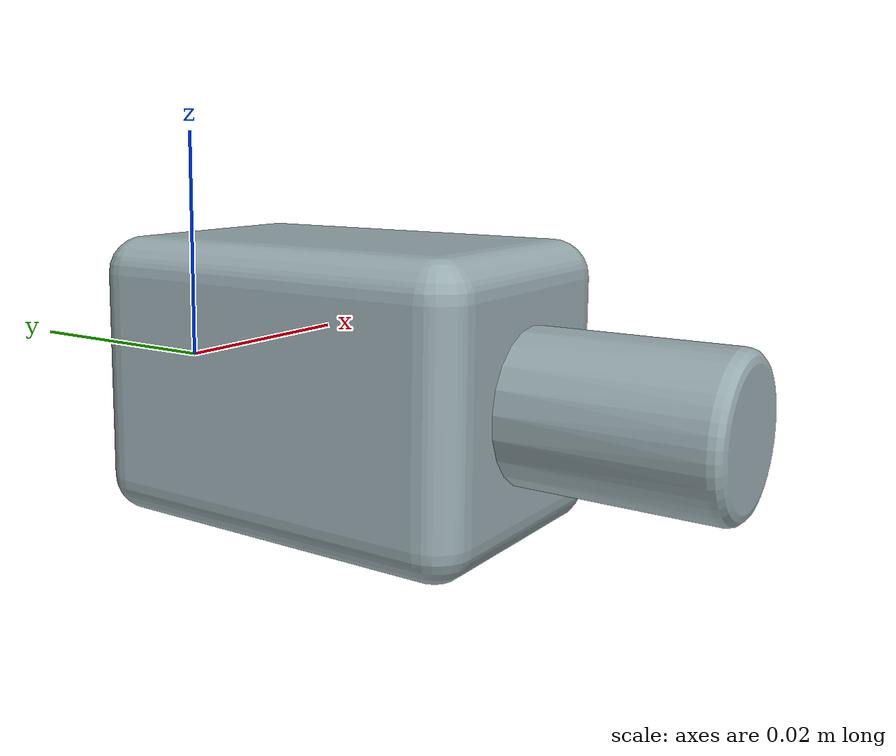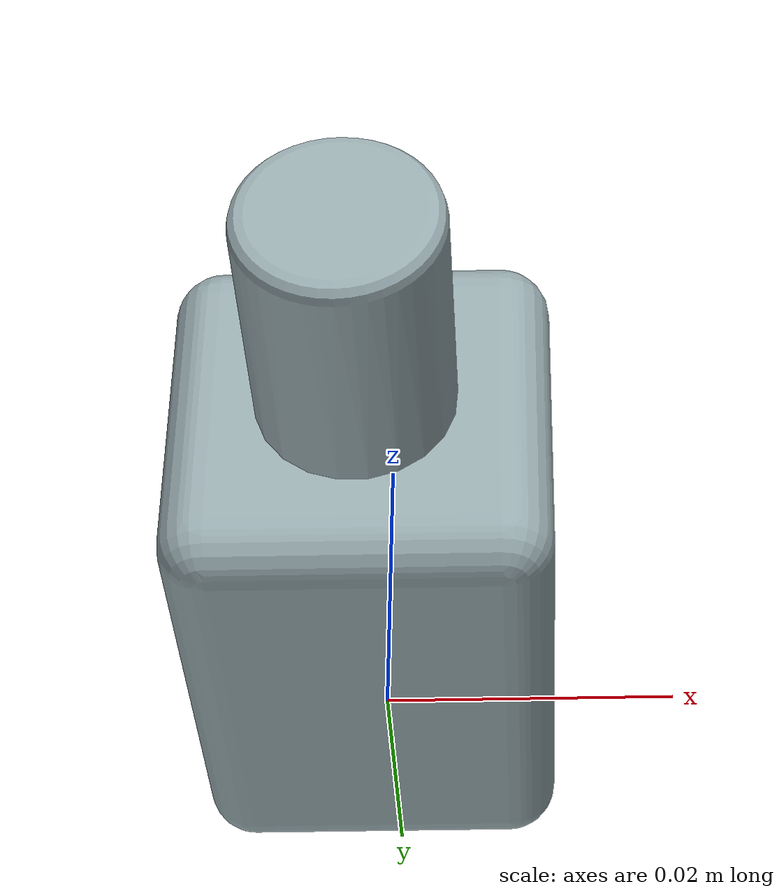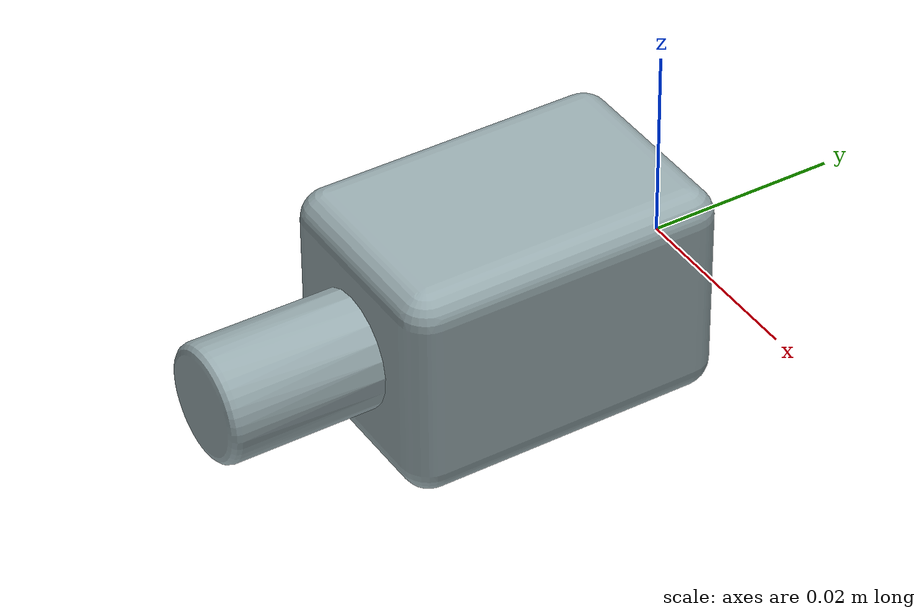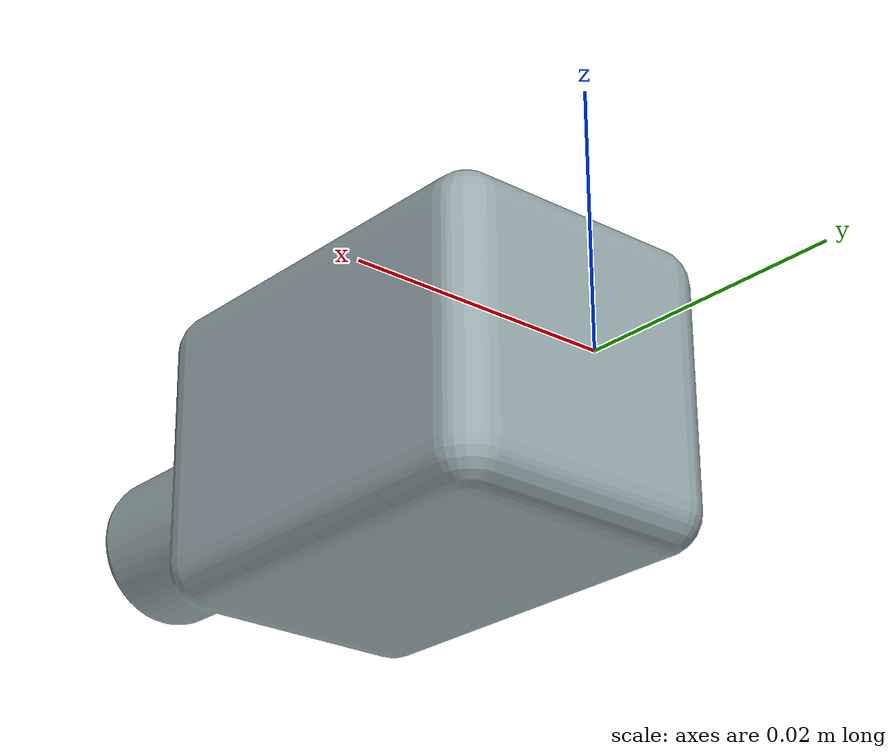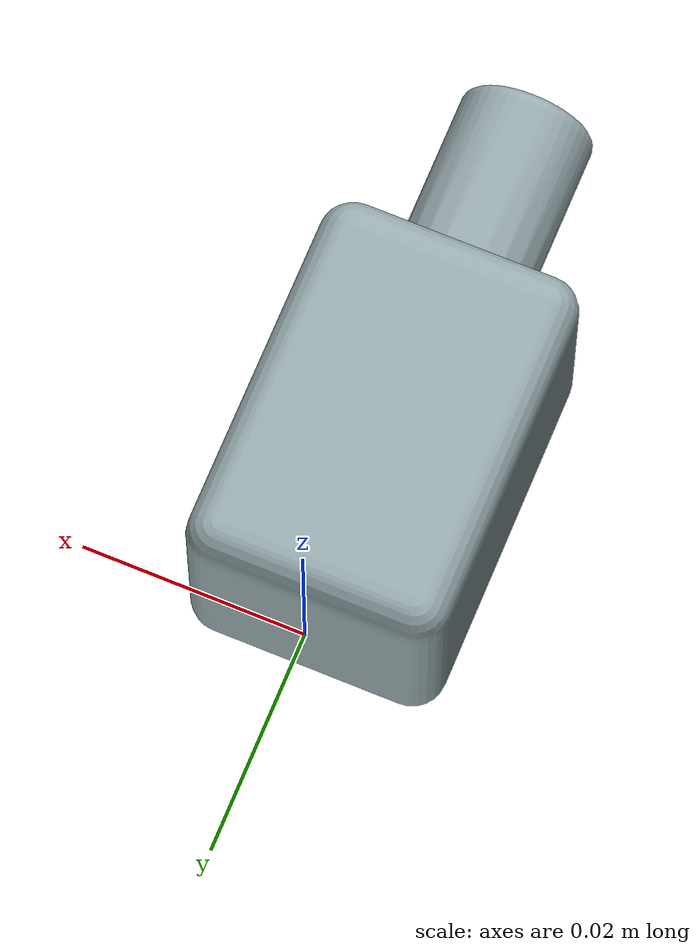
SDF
<?xml version="1.0"?>
<sdf version="1.6">
  <model name="lotion_2">
    <link name="lotion_2">
      <inertial>
        <pose>-1.403e-18 -9.5097e-20 0.019342 0 0 0</pose>
        <mass>0.019206</mass>
        <inertia>
          <ixx>3.4319e-06</ixx>
          <ixy>-6.0585e-23</ixy>
          <ixz>2.4203e-22</ixz>
          <iyy>3.4319e-06</iyy>
          <iyz>2.1664e-22</iyz>
          <izz>1.5075e-06</izz>
        </inertia>
      </inertial>
      <visual name="lotion_2_visual">
        <pose>0 0 0 0 0 0</pose>
        <geometry>
          <mesh>
            <uri>models://deli_world/lotion_2/meshes/lotion_2.STL</uri>
          </mesh>
        </geometry>
        <material>
          <ambient>0.59216 0.66667 0.68235 1</ambient>
          <diffuse>0.59216 0.66667 0.68235 1</diffuse>
          <specular>0 0 0 1</specular>
        </material>
      </visual>
      <collision name="lotion_2_collision">
        <pose>0 0 0 0 0 0</pose>
        <geometry>
          <mesh>
            <uri>models://deli_world/lotion_2/meshes/lotion_2.STL</uri>
          </mesh>
        </geometry>
      </collision>
    </link>
  </model>
</sdf>
